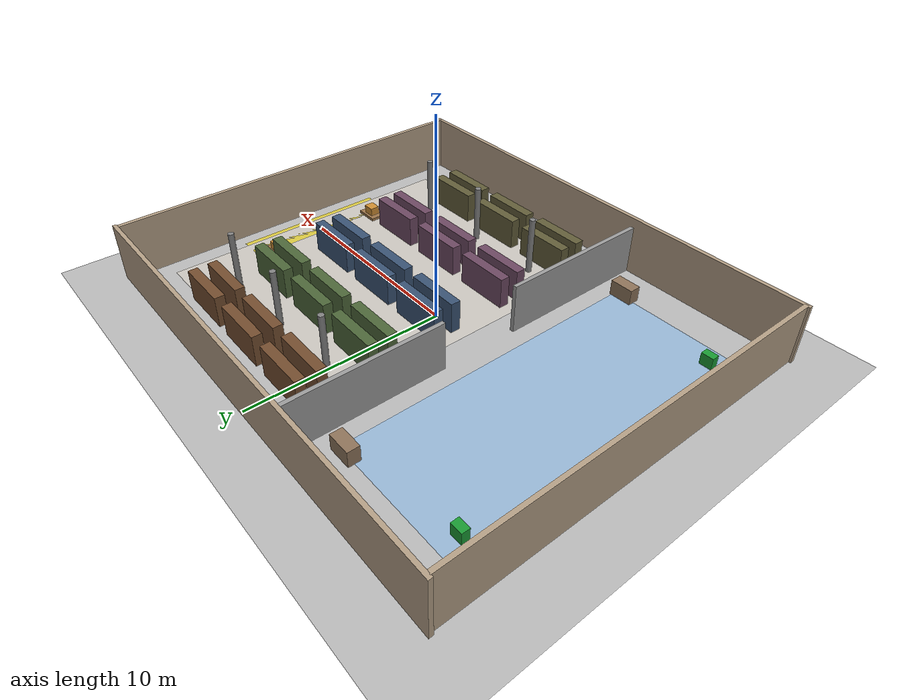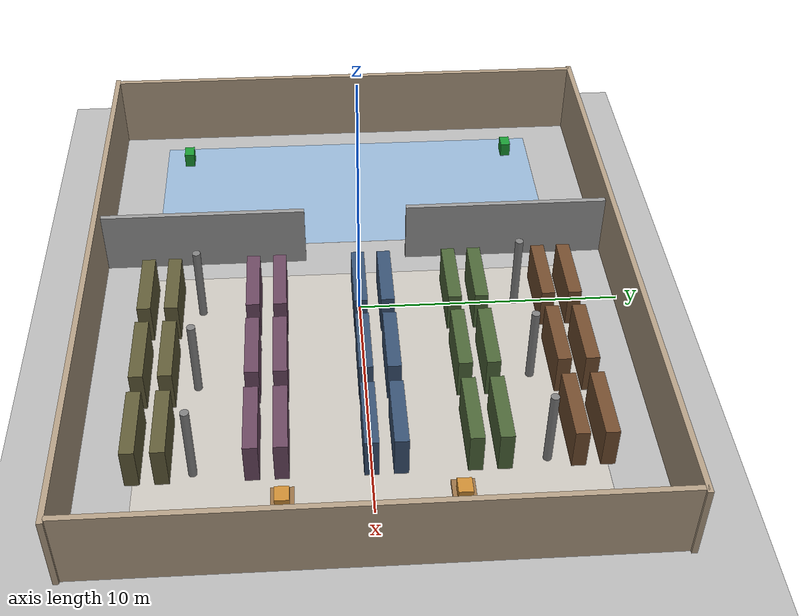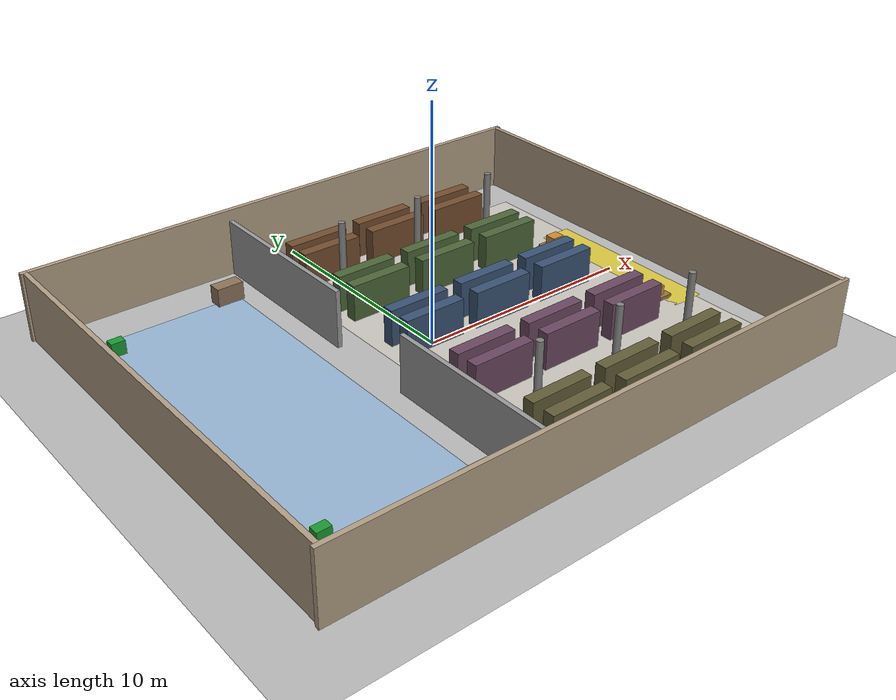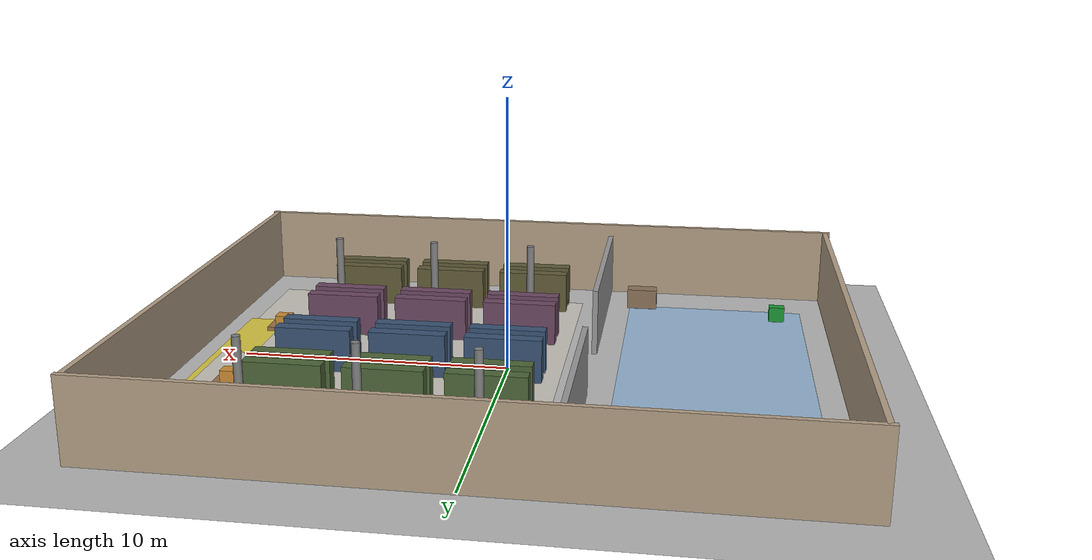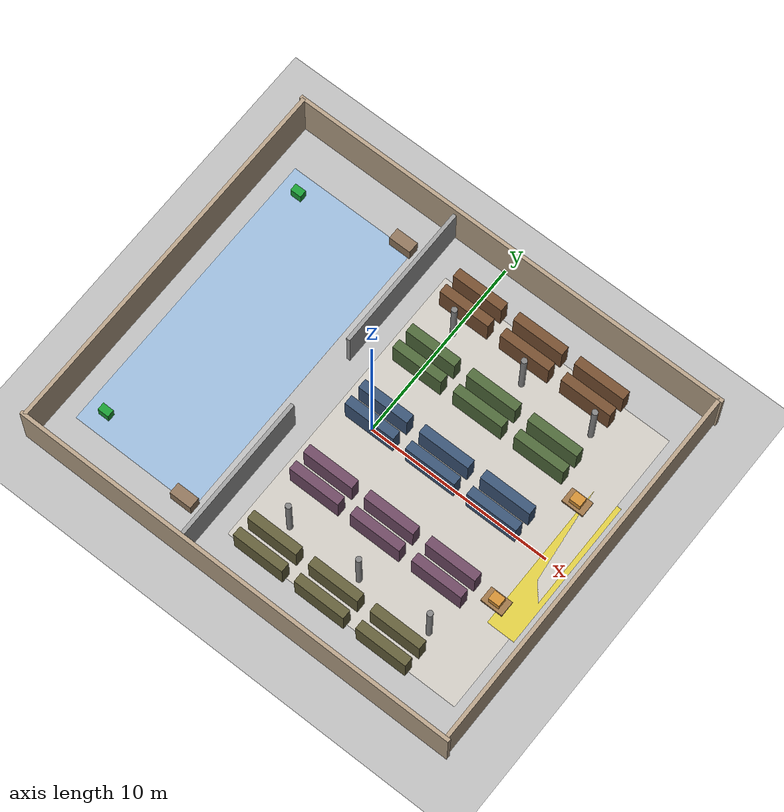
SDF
<?xml version="1.0" ?>
<sdf version='1.8'>
  <world name='warehouse'>

    <physics name='1ms' type='ignored'>
      <max_step_size>0.001</max_step_size>
      <real_time_factor>1</real_time_factor>
    </physics>

    <plugin filename="ignition-gazebo-physics-system"
            name="ignition::gazebo::systems::Physics"/>
    <plugin filename="ignition-gazebo-user-commands-system"
            name="ignition::gazebo::systems::UserCommands"/>
    <plugin filename="ignition-gazebo-scene-broadcaster-system"
            name="ignition::gazebo::systems::SceneBroadcaster"/>
    <plugin filename="ignition-gazebo-sensors-system"
            name="ignition::gazebo::systems::Sensors">
      <render_engine>ogre2</render_engine>
    </plugin>
    <plugin filename="ignition-gazebo-contact-system"
            name="ignition::gazebo::systems::Contact"/>

    <!-- Overhead lighting -->
    <light name='sun' type='directional'>
      <pose>0 0 20 0 0 0</pose>
      <cast_shadows>true</cast_shadows>
      <intensity>1</intensity>
      <direction>-0.2 0.1 -0.9</direction>
      <diffuse>1.0 0.98 0.95 1</diffuse>
      <specular>0.3 0.3 0.3 1</specular>
    </light>
    <light name='light_west' type='point'>
      <pose>-7 0 4 0 0 0</pose>
      <diffuse>0.8 0.8 0.9 1</diffuse>
      <specular>0.1 0.1 0.1 1</specular>
      <attenuation><range>15</range><linear>0.05</linear></attenuation>
    </light>
    <light name='light_east' type='point'>
      <pose>5 0 4 0 0 0</pose>
      <diffuse>0.8 0.8 0.9 1</diffuse>
      <specular>0.1 0.1 0.1 1</specular>
      <attenuation><range>15</range><linear>0.05</linear></attenuation>
    </light>

    <!-- ── Ground plane ──────────────────────────────────────────────────── -->
    <model name='ground_plane'>
      <static>true</static>
      <link name='link'>
        <collision name='c'>
          <geometry><plane><normal>0 0 1</normal><size>100 100</size></plane></geometry>
        </collision>
        <visual name='v'>
          <geometry><plane><normal>0 0 1</normal><size>100 100</size></plane></geometry>
          <material><ambient>0.72 0.72 0.72 1</ambient><diffuse>0.72 0.72 0.72 1</diffuse></material>
        </visual>
      </link>
    </model>

    <!-- ── Floor zone markers (flat coloured pads, h=0.005 m) ───────────── -->
    <!-- Staging zone: light blue -->
    <model name='zone_staging'>
      <static>true</static><pose>-7.5 0 0.003 0 0 0</pose>
      <link name='link'>
        <collision name='c'><geometry><box><size>7 16 0.005</size></box></geometry></collision>
        <visual name='v'><geometry><box><size>7 16 0.005</size></box></geometry>
          <material><ambient>0.55 0.75 0.95 0.6</ambient><diffuse>0.55 0.75 0.95 0.6</diffuse></material>
        </visual>
      </link>
    </model>
    <!-- Storage zone: light warm grey -->
    <model name='zone_storage'>
      <static>true</static><pose>4.5 0 0.003 0 0 0</pose>
      <link name='link'>
        <collision name='c'><geometry><box><size>13 16 0.005</size></box></geometry></collision>
        <visual name='v'><geometry><box><size>13 16 0.005</size></box></geometry>
          <material><ambient>0.88 0.85 0.80 0.6</ambient><diffuse>0.88 0.85 0.80 0.6</diffuse></material>
        </visual>
      </link>
    </model>
    <!-- Loading dock: yellow -->
    <model name='zone_dock'>
      <static>true</static><pose>10.5 0 0.003 0 0 0</pose>
      <link name='link'>
        <collision name='c'><geometry><box><size>1.5 8 0.005</size></box></geometry></collision>
        <visual name='v'><geometry><box><size>1.5 8 0.005</size></box></geometry>
          <material><ambient>0.95 0.85 0.1 0.7</ambient><diffuse>0.95 0.85 0.1 0.7</diffuse></material>
        </visual>
      </link>
    </model>

    <!-- ── Outer walls (24 m × 20 m, 3 m tall) ─────────────────────────── -->
    <!-- North wall -->
    <model name='wall_north'>
      <static>true</static><pose>0 10 1.5 0 0 0</pose>
      <link name='link'>
        <collision name='c'><geometry><box><size>24.4 0.2 3</size></box></geometry></collision>
        <visual name='v'><geometry><box><size>24.4 0.2 3</size></box></geometry>
          <material><ambient>0.70 0.62 0.52 1</ambient><diffuse>0.70 0.62 0.52 1</diffuse></material>
        </visual>
      </link>
    </model>
    <!-- South wall -->
    <model name='wall_south'>
      <static>true</static><pose>0 -10 1.5 0 0 0</pose>
      <link name='link'>
        <collision name='c'><geometry><box><size>24.4 0.2 3</size></box></geometry></collision>
        <visual name='v'><geometry><box><size>24.4 0.2 3</size></box></geometry>
          <material><ambient>0.70 0.62 0.52 1</ambient><diffuse>0.70 0.62 0.52 1</diffuse></material>
        </visual>
      </link>
    </model>
    <!-- East wall -->
    <model name='wall_east'>
      <static>true</static><pose>12 0 1.5 0 0 0</pose>
      <link name='link'>
        <collision name='c'><geometry><box><size>0.2 20 3</size></box></geometry></collision>
        <visual name='v'><geometry><box><size>0.2 20 3</size></box></geometry>
          <material><ambient>0.70 0.62 0.52 1</ambient><diffuse>0.70 0.62 0.52 1</diffuse></material>
        </visual>
      </link>
    </model>
    <!-- West wall -->
    <model name='wall_west'>
      <static>true</static><pose>-12 0 1.5 0 0 0</pose>
      <link name='link'>
        <collision name='c'><geometry><box><size>0.2 20 3</size></box></geometry></collision>
        <visual name='v'><geometry><box><size>0.2 20 3</size></box></geometry>
          <material><ambient>0.70 0.62 0.52 1</ambient><diffuse>0.70 0.62 0.52 1</diffuse></material>
        </visual>
      </link>
    </model>

    <!-- ── Interior separator wall (x = -3, gap at y=0 ±1.2 m) ─────────── -->
    <!-- North segment: y = 2 to 10 -->
    <model name='sep_north'>
      <static>true</static><pose>-3 6 1.25 0 0 0</pose>
      <link name='link'>
        <collision name='c'><geometry><box><size>0.2 8 2.5</size></box></geometry></collision>
        <visual name='v'><geometry><box><size>0.2 8 2.5</size></box></geometry>
          <material><ambient>0.60 0.60 0.60 1</ambient><diffuse>0.60 0.60 0.60 1</diffuse></material>
        </visual>
      </link>
    </model>
    <!-- South segment: y = -2 to -10 -->
    <model name='sep_south'>
      <static>true</static><pose>-3 -6 1.25 0 0 0</pose>
      <link name='link'>
        <collision name='c'><geometry><box><size>0.2 8 2.5</size></box></geometry></collision>
        <visual name='v'><geometry><box><size>0.2 8 2.5</size></box></geometry>
          <material><ambient>0.60 0.60 0.60 1</ambient><diffuse>0.60 0.60 0.60 1</diffuse></material>
        </visual>
      </link>
    </model>

    <!-- ── Support pillars (x=0,4,8 at y=±6) ───────────────────────────── -->
    <model name='pillar_A1'><static>true</static><pose>0  6 1.5 0 0 0</pose><link name='link'><collision name='c'><geometry><cylinder><radius>0.15</radius><length>3</length></cylinder></geometry></collision><visual name='v'><geometry><cylinder><radius>0.15</radius><length>3</length></cylinder></geometry><material><ambient>0.5 0.5 0.5 1</ambient><diffuse>0.5 0.5 0.5 1</diffuse></material></visual></link></model>
    <model name='pillar_A2'><static>true</static><pose>0 -6 1.5 0 0 0</pose><link name='link'><collision name='c'><geometry><cylinder><radius>0.15</radius><length>3</length></cylinder></geometry></collision><visual name='v'><geometry><cylinder><radius>0.15</radius><length>3</length></cylinder></geometry><material><ambient>0.5 0.5 0.5 1</ambient><diffuse>0.5 0.5 0.5 1</diffuse></material></visual></link></model>
    <model name='pillar_B1'><static>true</static><pose>4  6 1.5 0 0 0</pose><link name='link'><collision name='c'><geometry><cylinder><radius>0.15</radius><length>3</length></cylinder></geometry></collision><visual name='v'><geometry><cylinder><radius>0.15</radius><length>3</length></cylinder></geometry><material><ambient>0.5 0.5 0.5 1</ambient><diffuse>0.5 0.5 0.5 1</diffuse></material></visual></link></model>
    <model name='pillar_B2'><static>true</static><pose>4 -6 1.5 0 0 0</pose><link name='link'><collision name='c'><geometry><cylinder><radius>0.15</radius><length>3</length></cylinder></geometry></collision><visual name='v'><geometry><cylinder><radius>0.15</radius><length>3</length></cylinder></geometry><material><ambient>0.5 0.5 0.5 1</ambient><diffuse>0.5 0.5 0.5 1</diffuse></material></visual></link></model>
    <model name='pillar_C1'><static>true</static><pose>8  6 1.5 0 0 0</pose><link name='link'><collision name='c'><geometry><cylinder><radius>0.15</radius><length>3</length></cylinder></geometry></collision><visual name='v'><geometry><cylinder><radius>0.15</radius><length>3</length></cylinder></geometry><material><ambient>0.5 0.5 0.5 1</ambient><diffuse>0.5 0.5 0.5 1</diffuse></material></visual></link></model>
    <model name='pillar_C2'><static>true</static><pose>8 -6 1.5 0 0 0</pose><link name='link'><collision name='c'><geometry><cylinder><radius>0.15</radius><length>3</length></cylinder></geometry></collision><visual name='v'><geometry><cylinder><radius>0.15</radius><length>3</length></cylinder></geometry><material><ambient>0.5 0.5 0.5 1</ambient><diffuse>0.5 0.5 0.5 1</diffuse></material></visual></link></model>

    <!-- ── Shelf rows ────────────────────────────────────────────────────── -->

    <!-- Shelf material macros (brown tones per row for visual variety) -->

    <!-- ROW PAIR 1 — y=8.0 / 7.0 -->
    <!-- front y=8.0 -->
    <model name='sh_1f_1'><static>true</static><pose>0   8.0 0.8 0 0 0</pose><link name='link'><collision name='c'><geometry><box><size>2.8 0.5 1.6</size></box></geometry></collision><visual name='v'><geometry><box><size>2.8 0.5 1.6</size></box></geometry><material><ambient>0.45 0.30 0.18 1</ambient><diffuse>0.45 0.30 0.18 1</diffuse></material></visual></link></model>
    <model name='sh_1f_2'><static>true</static><pose>3.5 8.0 0.8 0 0 0</pose><link name='link'><collision name='c'><geometry><box><size>2.8 0.5 1.6</size></box></geometry></collision><visual name='v'><geometry><box><size>2.8 0.5 1.6</size></box></geometry><material><ambient>0.45 0.30 0.18 1</ambient><diffuse>0.45 0.30 0.18 1</diffuse></material></visual></link></model>
    <model name='sh_1f_3'><static>true</static><pose>7.0 8.0 0.8 0 0 0</pose><link name='link'><collision name='c'><geometry><box><size>2.8 0.5 1.6</size></box></geometry></collision><visual name='v'><geometry><box><size>2.8 0.5 1.6</size></box></geometry><material><ambient>0.45 0.30 0.18 1</ambient><diffuse>0.45 0.30 0.18 1</diffuse></material></visual></link></model>
    <!-- back y=7.0 -->
    <model name='sh_1b_1'><static>true</static><pose>0   7.0 0.8 0 0 0</pose><link name='link'><collision name='c'><geometry><box><size>2.8 0.5 1.6</size></box></geometry></collision><visual name='v'><geometry><box><size>2.8 0.5 1.6</size></box></geometry><material><ambient>0.45 0.30 0.18 1</ambient><diffuse>0.45 0.30 0.18 1</diffuse></material></visual></link></model>
    <model name='sh_1b_2'><static>true</static><pose>3.5 7.0 0.8 0 0 0</pose><link name='link'><collision name='c'><geometry><box><size>2.8 0.5 1.6</size></box></geometry></collision><visual name='v'><geometry><box><size>2.8 0.5 1.6</size></box></geometry><material><ambient>0.45 0.30 0.18 1</ambient><diffuse>0.45 0.30 0.18 1</diffuse></material></visual></link></model>
    <model name='sh_1b_3'><static>true</static><pose>7.0 7.0 0.8 0 0 0</pose><link name='link'><collision name='c'><geometry><box><size>2.8 0.5 1.6</size></box></geometry></collision><visual name='v'><geometry><box><size>2.8 0.5 1.6</size></box></geometry><material><ambient>0.45 0.30 0.18 1</ambient><diffuse>0.45 0.30 0.18 1</diffuse></material></visual></link></model>

    <!-- ROW PAIR 2 — y=4.5 / 3.5 -->
    <model name='sh_2f_1'><static>true</static><pose>0   4.5 0.8 0 0 0</pose><link name='link'><collision name='c'><geometry><box><size>2.8 0.5 1.6</size></box></geometry></collision><visual name='v'><geometry><box><size>2.8 0.5 1.6</size></box></geometry><material><ambient>0.30 0.40 0.22 1</ambient><diffuse>0.30 0.40 0.22 1</diffuse></material></visual></link></model>
    <model name='sh_2f_2'><static>true</static><pose>3.5 4.5 0.8 0 0 0</pose><link name='link'><collision name='c'><geometry><box><size>2.8 0.5 1.6</size></box></geometry></collision><visual name='v'><geometry><box><size>2.8 0.5 1.6</size></box></geometry><material><ambient>0.30 0.40 0.22 1</ambient><diffuse>0.30 0.40 0.22 1</diffuse></material></visual></link></model>
    <model name='sh_2f_3'><static>true</static><pose>7.0 4.5 0.8 0 0 0</pose><link name='link'><collision name='c'><geometry><box><size>2.8 0.5 1.6</size></box></geometry></collision><visual name='v'><geometry><box><size>2.8 0.5 1.6</size></box></geometry><material><ambient>0.30 0.40 0.22 1</ambient><diffuse>0.30 0.40 0.22 1</diffuse></material></visual></link></model>
    <model name='sh_2b_1'><static>true</static><pose>0   3.5 0.8 0 0 0</pose><link name='link'><collision name='c'><geometry><box><size>2.8 0.5 1.6</size></box></geometry></collision><visual name='v'><geometry><box><size>2.8 0.5 1.6</size></box></geometry><material><ambient>0.30 0.40 0.22 1</ambient><diffuse>0.30 0.40 0.22 1</diffuse></material></visual></link></model>
    <model name='sh_2b_2'><static>true</static><pose>3.5 3.5 0.8 0 0 0</pose><link name='link'><collision name='c'><geometry><box><size>2.8 0.5 1.6</size></box></geometry></collision><visual name='v'><geometry><box><size>2.8 0.5 1.6</size></box></geometry><material><ambient>0.30 0.40 0.22 1</ambient><diffuse>0.30 0.40 0.22 1</diffuse></material></visual></link></model>
    <model name='sh_2b_3'><static>true</static><pose>7.0 3.5 0.8 0 0 0</pose><link name='link'><collision name='c'><geometry><box><size>2.8 0.5 1.6</size></box></geometry></collision><visual name='v'><geometry><box><size>2.8 0.5 1.6</size></box></geometry><material><ambient>0.30 0.40 0.22 1</ambient><diffuse>0.30 0.40 0.22 1</diffuse></material></visual></link></model>

    <!-- ROW PAIR 3 — y=1.0 / 0.0 -->
    <model name='sh_3f_1'><static>true</static><pose>0   1.0 0.8 0 0 0</pose><link name='link'><collision name='c'><geometry><box><size>2.8 0.5 1.6</size></box></geometry></collision><visual name='v'><geometry><box><size>2.8 0.5 1.6</size></box></geometry><material><ambient>0.22 0.32 0.45 1</ambient><diffuse>0.22 0.32 0.45 1</diffuse></material></visual></link></model>
    <model name='sh_3f_2'><static>true</static><pose>3.5 1.0 0.8 0 0 0</pose><link name='link'><collision name='c'><geometry><box><size>2.8 0.5 1.6</size></box></geometry></collision><visual name='v'><geometry><box><size>2.8 0.5 1.6</size></box></geometry><material><ambient>0.22 0.32 0.45 1</ambient><diffuse>0.22 0.32 0.45 1</diffuse></material></visual></link></model>
    <model name='sh_3f_3'><static>true</static><pose>7.0 1.0 0.8 0 0 0</pose><link name='link'><collision name='c'><geometry><box><size>2.8 0.5 1.6</size></box></geometry></collision><visual name='v'><geometry><box><size>2.8 0.5 1.6</size></box></geometry><material><ambient>0.22 0.32 0.45 1</ambient><diffuse>0.22 0.32 0.45 1</diffuse></material></visual></link></model>
    <model name='sh_3b_1'><static>true</static><pose>0   0.0 0.8 0 0 0</pose><link name='link'><collision name='c'><geometry><box><size>2.8 0.5 1.6</size></box></geometry></collision><visual name='v'><geometry><box><size>2.8 0.5 1.6</size></box></geometry><material><ambient>0.22 0.32 0.45 1</ambient><diffuse>0.22 0.32 0.45 1</diffuse></material></visual></link></model>
    <model name='sh_3b_2'><static>true</static><pose>3.5 0.0 0.8 0 0 0</pose><link name='link'><collision name='c'><geometry><box><size>2.8 0.5 1.6</size></box></geometry></collision><visual name='v'><geometry><box><size>2.8 0.5 1.6</size></box></geometry><material><ambient>0.22 0.32 0.45 1</ambient><diffuse>0.22 0.32 0.45 1</diffuse></material></visual></link></model>
    <model name='sh_3b_3'><static>true</static><pose>7.0 0.0 0.8 0 0 0</pose><link name='link'><collision name='c'><geometry><box><size>2.8 0.5 1.6</size></box></geometry></collision><visual name='v'><geometry><box><size>2.8 0.5 1.6</size></box></geometry><material><ambient>0.22 0.32 0.45 1</ambient><diffuse>0.22 0.32 0.45 1</diffuse></material></visual></link></model>

    <!-- ROW PAIR 4 — y=-3.0 / -4.0 -->
    <model name='sh_4f_1'><static>true</static><pose>0  -3.0 0.8 0 0 0</pose><link name='link'><collision name='c'><geometry><box><size>2.8 0.5 1.6</size></box></geometry></collision><visual name='v'><geometry><box><size>2.8 0.5 1.6</size></box></geometry><material><ambient>0.42 0.28 0.38 1</ambient><diffuse>0.42 0.28 0.38 1</diffuse></material></visual></link></model>
    <model name='sh_4f_2'><static>true</static><pose>3.5 -3.0 0.8 0 0 0</pose><link name='link'><collision name='c'><geometry><box><size>2.8 0.5 1.6</size></box></geometry></collision><visual name='v'><geometry><box><size>2.8 0.5 1.6</size></box></geometry><material><ambient>0.42 0.28 0.38 1</ambient><diffuse>0.42 0.28 0.38 1</diffuse></material></visual></link></model>
    <model name='sh_4f_3'><static>true</static><pose>7.0 -3.0 0.8 0 0 0</pose><link name='link'><collision name='c'><geometry><box><size>2.8 0.5 1.6</size></box></geometry></collision><visual name='v'><geometry><box><size>2.8 0.5 1.6</size></box></geometry><material><ambient>0.42 0.28 0.38 1</ambient><diffuse>0.42 0.28 0.38 1</diffuse></material></visual></link></model>
    <model name='sh_4b_1'><static>true</static><pose>0  -4.0 0.8 0 0 0</pose><link name='link'><collision name='c'><geometry><box><size>2.8 0.5 1.6</size></box></geometry></collision><visual name='v'><geometry><box><size>2.8 0.5 1.6</size></box></geometry><material><ambient>0.42 0.28 0.38 1</ambient><diffuse>0.42 0.28 0.38 1</diffuse></material></visual></link></model>
    <model name='sh_4b_2'><static>true</static><pose>3.5 -4.0 0.8 0 0 0</pose><link name='link'><collision name='c'><geometry><box><size>2.8 0.5 1.6</size></box></geometry></collision><visual name='v'><geometry><box><size>2.8 0.5 1.6</size></box></geometry><material><ambient>0.42 0.28 0.38 1</ambient><diffuse>0.42 0.28 0.38 1</diffuse></material></visual></link></model>
    <model name='sh_4b_3'><static>true</static><pose>7.0 -4.0 0.8 0 0 0</pose><link name='link'><collision name='c'><geometry><box><size>2.8 0.5 1.6</size></box></geometry></collision><visual name='v'><geometry><box><size>2.8 0.5 1.6</size></box></geometry><material><ambient>0.42 0.28 0.38 1</ambient><diffuse>0.42 0.28 0.38 1</diffuse></material></visual></link></model>

    <!-- ROW PAIR 5 — y=-7.0 / -8.0 -->
    <model name='sh_5f_1'><static>true</static><pose>0  -7.0 0.8 0 0 0</pose><link name='link'><collision name='c'><geometry><box><size>2.8 0.5 1.6</size></box></geometry></collision><visual name='v'><geometry><box><size>2.8 0.5 1.6</size></box></geometry><material><ambient>0.38 0.36 0.22 1</ambient><diffuse>0.38 0.36 0.22 1</diffuse></material></visual></link></model>
    <model name='sh_5f_2'><static>true</static><pose>3.5 -7.0 0.8 0 0 0</pose><link name='link'><collision name='c'><geometry><box><size>2.8 0.5 1.6</size></box></geometry></collision><visual name='v'><geometry><box><size>2.8 0.5 1.6</size></box></geometry><material><ambient>0.38 0.36 0.22 1</ambient><diffuse>0.38 0.36 0.22 1</diffuse></material></visual></link></model>
    <model name='sh_5f_3'><static>true</static><pose>7.0 -7.0 0.8 0 0 0</pose><link name='link'><collision name='c'><geometry><box><size>2.8 0.5 1.6</size></box></geometry></collision><visual name='v'><geometry><box><size>2.8 0.5 1.6</size></box></geometry><material><ambient>0.38 0.36 0.22 1</ambient><diffuse>0.38 0.36 0.22 1</diffuse></material></visual></link></model>
    <model name='sh_5b_1'><static>true</static><pose>0  -8.0 0.8 0 0 0</pose><link name='link'><collision name='c'><geometry><box><size>2.8 0.5 1.6</size></box></geometry></collision><visual name='v'><geometry><box><size>2.8 0.5 1.6</size></box></geometry><material><ambient>0.38 0.36 0.22 1</ambient><diffuse>0.38 0.36 0.22 1</diffuse></material></visual></link></model>
    <model name='sh_5b_2'><static>true</static><pose>3.5 -8.0 0.8 0 0 0</pose><link name='link'><collision name='c'><geometry><box><size>2.8 0.5 1.6</size></box></geometry></collision><visual name='v'><geometry><box><size>2.8 0.5 1.6</size></box></geometry><material><ambient>0.38 0.36 0.22 1</ambient><diffuse>0.38 0.36 0.22 1</diffuse></material></visual></link></model>
    <model name='sh_5b_3'><static>true</static><pose>7.0 -8.0 0.8 0 0 0</pose><link name='link'><collision name='c'><geometry><box><size>2.8 0.5 1.6</size></box></geometry></collision><visual name='v'><geometry><box><size>2.8 0.5 1.6</size></box></geometry><material><ambient>0.38 0.36 0.22 1</ambient><diffuse>0.38 0.36 0.22 1</diffuse></material></visual></link></model>

    <!-- ── Charging stations (NW + SW corners of staging zone) ──────────── -->
    <model name='charger_nw'>
      <static>true</static><pose>-10 7 0.3 0 0 0</pose>
      <link name='link'>
        <collision name='c'><geometry><box><size>0.6 0.4 0.6</size></box></geometry></collision>
        <visual name='v'><geometry><box><size>0.6 0.4 0.6</size></box></geometry>
          <material><ambient>0.1 0.6 0.2 1</ambient><diffuse>0.1 0.6 0.2 1</diffuse></material>
        </visual>
      </link>
    </model>
    <model name='charger_sw'>
      <static>true</static><pose>-10 -7 0.3 0 0 0</pose>
      <link name='link'>
        <collision name='c'><geometry><box><size>0.6 0.4 0.6</size></box></geometry></collision>
        <visual name='v'><geometry><box><size>0.6 0.4 0.6</size></box></geometry>
          <material><ambient>0.1 0.6 0.2 1</ambient><diffuse>0.1 0.6 0.2 1</diffuse></material>
        </visual>
      </link>
    </model>

    <!-- ── Workstation desk (staging zone, east side of staging) ─────────── -->
    <model name='desk_1'>
      <static>true</static><pose>-4.5 8 0.4 0 0 0</pose>
      <link name='link'>
        <collision name='c'><geometry><box><size>1.2 0.6 0.8</size></box></geometry></collision>
        <visual name='v'><geometry><box><size>1.2 0.6 0.8</size></box></geometry>
          <material><ambient>0.55 0.45 0.35 1</ambient><diffuse>0.55 0.45 0.35 1</diffuse></material>
        </visual>
      </link>
    </model>
    <model name='desk_2'>
      <static>true</static><pose>-4.5 -8 0.4 0 0 0</pose>
      <link name='link'>
        <collision name='c'><geometry><box><size>1.2 0.6 0.8</size></box></geometry></collision>
        <visual name='v'><geometry><box><size>1.2 0.6 0.8</size></box></geometry>
          <material><ambient>0.55 0.45 0.35 1</ambient><diffuse>0.55 0.45 0.35 1</diffuse></material>
        </visual>
      </link>
    </model>

    <!-- ── Pallet stacks near loading dock ───────────────────────────────── -->
    <model name='pallet_1'>
      <static>true</static><pose>9.5  3 0.1 0 0 0</pose>
      <link name='link'>
        <collision name='c'><geometry><box><size>1.2 0.8 0.15</size></box></geometry></collision>
        <visual name='v'><geometry><box><size>1.2 0.8 0.15</size></box></geometry>
          <material><ambient>0.60 0.45 0.28 1</ambient><diffuse>0.60 0.45 0.28 1</diffuse></material>
        </visual>
      </link>
    </model>
    <model name='pallet_2'>
      <static>true</static><pose>9.5 -3 0.1 0 0 0</pose>
      <link name='link'>
        <collision name='c'><geometry><box><size>1.2 0.8 0.15</size></box></geometry></collision>
        <visual name='v'><geometry><box><size>1.2 0.8 0.15</size></box></geometry>
          <material><ambient>0.60 0.45 0.28 1</ambient><diffuse>0.60 0.45 0.28 1</diffuse></material>
        </visual>
      </link>
    </model>
    <!-- Boxes on pallets -->
    <model name='box_1'>
      <static>true</static><pose>9.5  3 0.375 0 0 0</pose>
      <link name='link'>
        <collision name='c'><geometry><box><size>0.6 0.5 0.45</size></box></geometry></collision>
        <visual name='v'><geometry><box><size>0.6 0.5 0.45</size></box></geometry>
          <material><ambient>0.80 0.55 0.20 1</ambient><diffuse>0.80 0.55 0.20 1</diffuse></material>
        </visual>
      </link>
    </model>
    <model name='box_2'>
      <static>true</static><pose>9.5 -3 0.375 0 0 0</pose>
      <link name='link'>
        <collision name='c'><geometry><box><size>0.6 0.5 0.45</size></box></geometry></collision>
        <visual name='v'><geometry><box><size>0.6 0.5 0.45</size></box></geometry>
          <material><ambient>0.80 0.55 0.20 1</ambient><diffuse>0.80 0.55 0.20 1</diffuse></material>
        </visual>
      </link>
    </model>

  </world>
</sdf>
